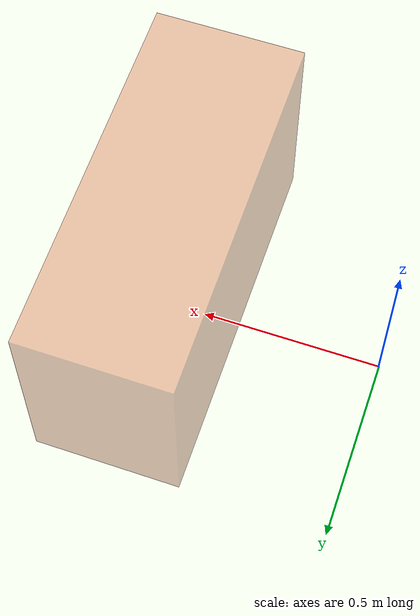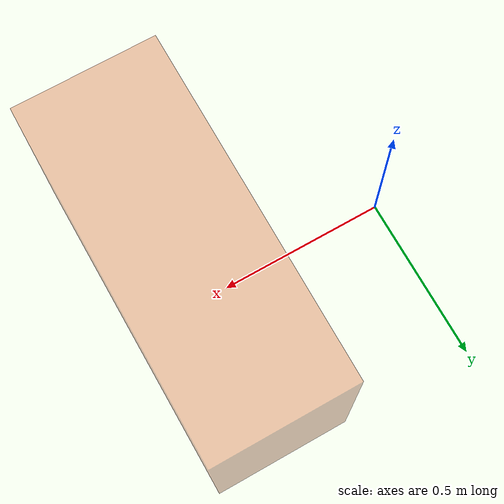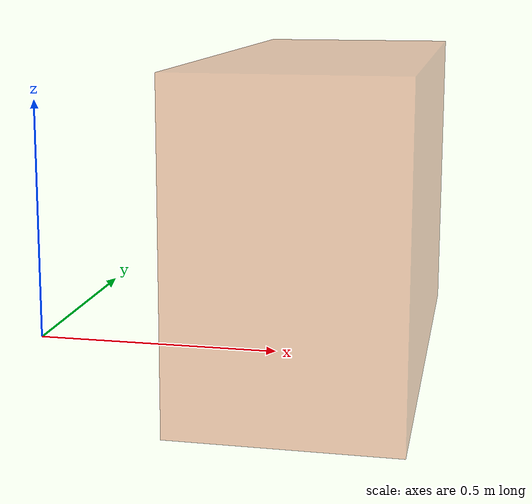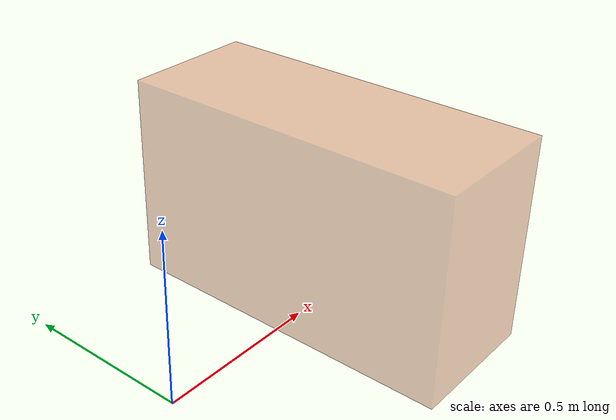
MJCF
<mujoco model="push_box">
  <worldbody>
    <body name="push_box" pos="0.6 0 0.3005">
      <freejoint/>
      <inertial pos="0 0 0" mass="10000.5" diaginertia="10.000566667 10.000216667 10.000483333"/>

      <geom name="push_box_visual"
            type="box"
            size="0.2 0.5 0.3"
            rgba="0.8 0.4 0.2 0.4"
            contype="0"
            conaffinity="0"/>

      <geom name="push_box_collision"
            type="box"
            size="0.2 0.5 0.3"
            group="3"
            condim="3"
            contype="4"
            conaffinity="1"
            friction="0.15 0.01 0.01"
            margin="0.0015"
            gap="0.0005"
            solref="0.03 1.0"
            solimp="0.90 0.95 0.001"
            rgba="0.8 0.4 0.2 0"/>
    </body>
  </worldbody>
</mujoco>
